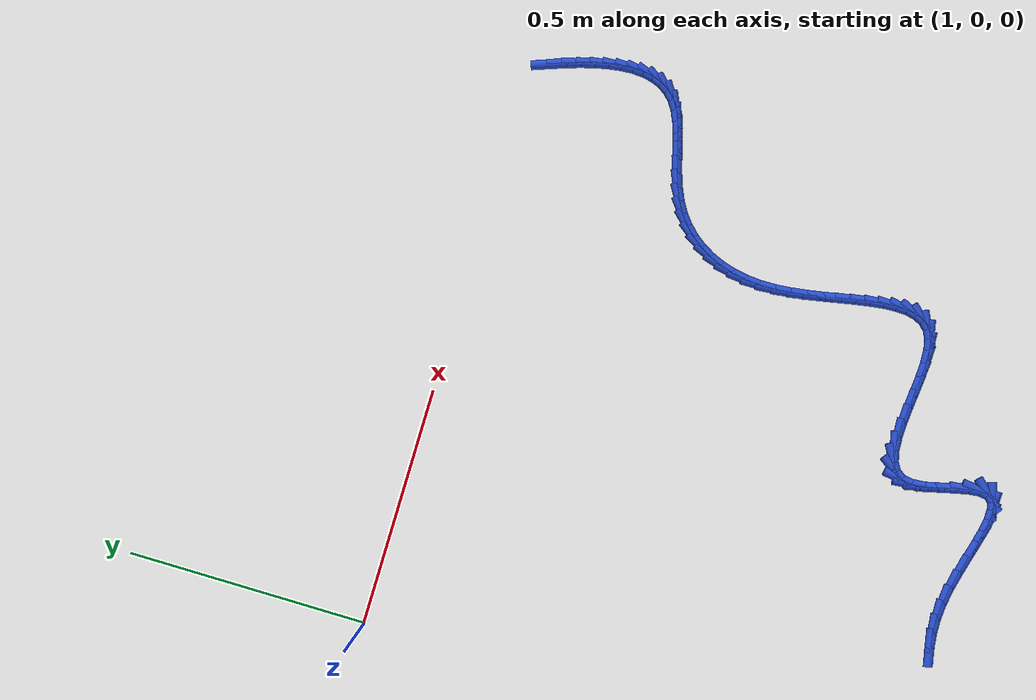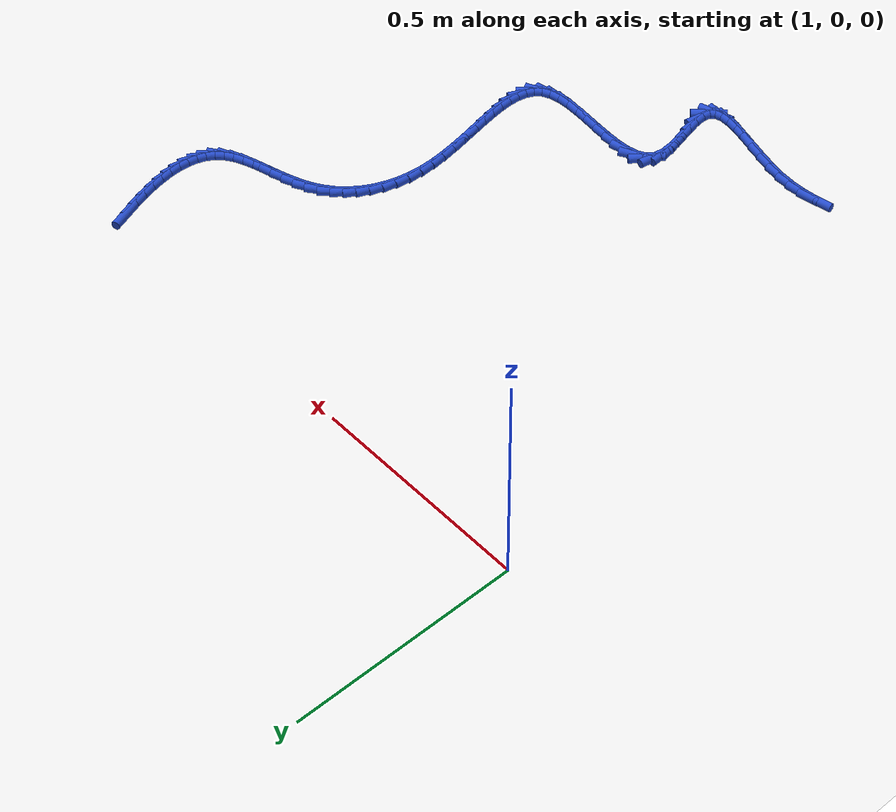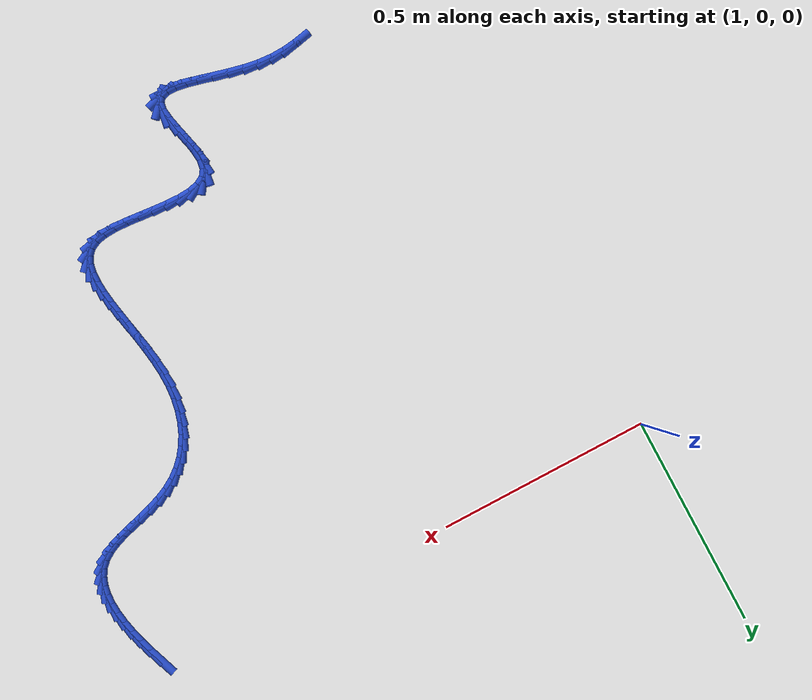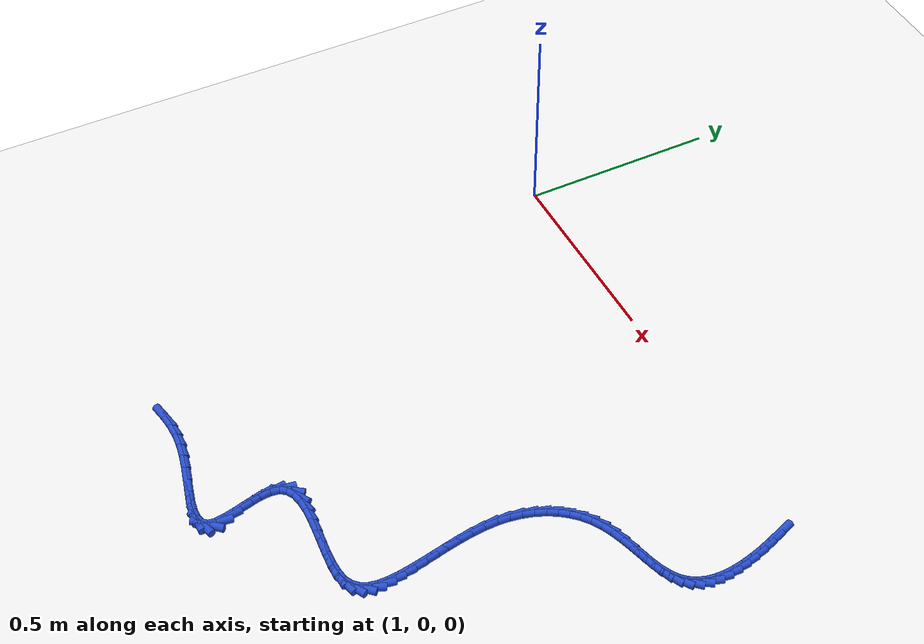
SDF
<sdf version="1.6">
 <world name="default">
  <model name="ground_plane">
   <static>1</static>
   <link name="link">
    <collision name="collision">
     <geometry><plane><normal>0 0 1</normal><size>100 100</size></plane></geometry>
     <surface><friction><ode><mu>100</mu><mu2>50</mu2></ode></friction></surface>
    </collision>
    <visual name="visual">
     <cast_shadows>0</cast_shadows>
     <geometry><plane><normal>0 0 1</normal><size>100 100</size></plane></geometry>
     <material>
      <script><uri>file://media/materials/scripts/gazebo.material</uri><name>Gazebo/WhiteGlow</name></script>
     </material>
    </visual>
   </link>
  </model>
  <model name="line">
   <link name="link_144">
    <pose>2.210489001187484 -0.039229997507462366 0.01 0 1.57 -1.22511702229926</pose>
    <collision name="collision">
     <geometry><cylinder><radius>0.01</radius><length>0.08</length></cylinder></geometry>
    </collision>
    <visual name="visual">
     <material>
      <script><name>Gazebo/Blue</name><uri>file://media/materials/scripts/gazebo.material</uri></script>
     </material>
     <geometry><cylinder><radius>0.01</radius><length>0.08</length></cylinder></geometry>
    </visual>
   </link>
   <link name="link_145">
    <pose>2.221198087478243 -0.06896591488921268 0.01 0 1.57 -1.258835107251744</pose>
    <collision name="collision">
     <geometry><cylinder><radius>0.01</radius><length>0.08</length></cylinder></geometry>
    </collision>
    <visual name="visual">
     <material>
      <script><name>Gazebo/Blue</name><uri>file://media/materials/scripts/gazebo.material</uri></script>
     </material>
     <geometry><cylinder><radius>0.01</radius><length>0.08</length></cylinder></geometry>
    </visual>
   </link>
   <link name="link_146">
    <pose>2.2306071584330835 -0.09814211334353215 0.01 0 1.57 -1.3015253641112232</pose>
    <collision name="collision">
     <geometry><cylinder><radius>0.01</radius><length>0.08</length></cylinder></geometry>
    </collision>
    <visual name="visual">
     <material>
      <script><name>Gazebo/Blue</name><uri>file://media/materials/scripts/gazebo.material</uri></script>
     </material>
     <geometry><cylinder><radius>0.01</radius><length>0.08</length></cylinder></geometry>
    </visual>
   </link>
   <link name="link_147">
    <pose>2.2384458693210196 -0.1265459755670109 0.01 0 1.57 -1.3554344568841672</pose>
    <collision name="collision">
     <geometry><cylinder><radius>0.01</radius><length>0.08</length></cylinder></geometry>
    </collision>
    <visual name="visual">
     <material>
      <script><name>Gazebo/Blue</name><uri>file://media/materials/scripts/gazebo.material</uri></script>
     </material>
     <geometry><cylinder><radius>0.01</radius><length>0.08</length></cylinder></geometry>
    </visual>
   </link>
   <link name="link_148">
    <pose>2.244443875411063 -0.15396488425623905 0.01 0 1.57 -1.4236316221638114</pose>
    <collision name="collision">
     <geometry><cylinder><radius>0.01</radius><length>0.08</length></cylinder></geometry>
    </collision>
    <visual name="visual">
     <material>
      <script><name>Gazebo/Blue</name><uri>file://media/materials/scripts/gazebo.material</uri></script>
     </material>
     <geometry><cylinder><radius>0.01</radius><length>0.08</length></cylinder></geometry>
    </visual>
   </link>
   <link name="link_149">
    <pose>2.248330831972227 -0.18018622210780671 0.01 0 1.57 -1.5101897656618217</pose>
    <collision name="collision">
     <geometry><cylinder><radius>0.01</radius><length>0.08</length></cylinder></geometry>
    </collision>
    <visual name="visual">
     <material>
      <script><name>Gazebo/Blue</name><uri>file://media/materials/scripts/gazebo.material</uri></script>
     </material>
     <geometry><cylinder><radius>0.01</radius><length>0.08</length></cylinder></geometry>
    </visual>
   </link>
   <link name="link_150">
    <pose>2.249836394273524 -0.20499737181830405 0.01 0 1.57 1.5214075223963521</pose>
    <collision name="collision">
     <geometry><cylinder><radius>0.01</radius><length>0.08</length></cylinder></geometry>
    </collision>
    <visual name="visual">
     <material>
      <script><name>Gazebo/Blue</name><uri>file://media/materials/scripts/gazebo.material</uri></script>
     </material>
     <geometry><cylinder><radius>0.01</radius><length>0.08</length></cylinder></geometry>
    </visual>
   </link>
   <link name="link_151">
    <pose>2.248690217583968 -0.22818571608432106 0.01 0 1.57 1.3825279454444908</pose>
    <collision name="collision">
     <geometry><cylinder><radius>0.01</radius><length>0.08</length></cylinder></geometry>
    </collision>
    <visual name="visual">
     <material>
      <script><name>Gazebo/Blue</name><uri>file://media/materials/scripts/gazebo.material</uri></script>
     </material>
     <geometry><cylinder><radius>0.01</radius><length>0.08</length></cylinder></geometry>
    </visual>
   </link>
   <link name="link_152">
    <pose>2.24462195717257 -0.24953863760244716 0.01 0 1.57 1.2110560425450028</pose>
    <collision name="collision">
     <geometry><cylinder><radius>0.01</radius><length>0.08</length></cylinder></geometry>
    </collision>
    <visual name="visual">
     <material>
      <script><name>Gazebo/Blue</name><uri>file://media/materials/scripts/gazebo.material</uri></script>
     </material>
     <geometry><cylinder><radius>0.01</radius><length>0.08</length></cylinder></geometry>
    </visual>
   </link>
   <link name="link_153">
    <pose>2.237361268308344 -0.268843519069274 0.01 0 1.57 1.0092145886800634</pose>
    <collision name="collision">
     <geometry><cylinder><radius>0.01</radius><length>0.08</length></cylinder></geometry>
    </collision>
    <visual name="visual">
     <material>
      <script><name>Gazebo/Blue</name><uri>file://media/materials/scripts/gazebo.material</uri></script>
     </material>
     <geometry><cylinder><radius>0.01</radius><length>0.08</length></cylinder></geometry>
    </visual>
   </link>
   <link name="link_154">
    <pose>2.2266378062603023 -0.2858877431813909 0.01 0 1.57 0.789338178329338</pose>
    <collision name="collision">
     <geometry><cylinder><radius>0.01</radius><length>0.08</length></cylinder></geometry>
    </collision>
    <visual name="visual">
     <material>
      <script><name>Gazebo/Blue</name><uri>file://media/materials/scripts/gazebo.material</uri></script>
     </material>
     <geometry><cylinder><radius>0.01</radius><length>0.08</length></cylinder></geometry>
    </visual>
   </link>
   <link name="link_155">
    <pose>2.2121812262974574 -0.3004586926353878 0.01 0 1.57 0.5784057601118012</pose>
    <collision name="collision">
     <geometry><cylinder><radius>0.01</radius><length>0.08</length></cylinder></geometry>
    </collision>
    <visual name="visual">
     <material>
      <script><name>Gazebo/Blue</name><uri>file://media/materials/scripts/gazebo.material</uri></script>
     </material>
     <geometry><cylinder><radius>0.01</radius><length>0.08</length></cylinder></geometry>
    </visual>
   </link>
   <link name="link_156">
    <pose>2.1938335038396235 -0.31243777868644734 0.01 0 1.57 0.4258750322062477</pose>
    <collision name="collision">
     <geometry><cylinder><radius>0.01</radius><length>0.08</length></cylinder></geometry>
    </collision>
    <visual name="visual">
     <material>
      <script><name>Gazebo/Blue</name><uri>file://media/materials/scripts/gazebo.material</uri></script>
     </material>
     <geometry><cylinder><radius>0.01</radius><length>0.08</length></cylinder></geometry>
    </visual>
   </link>
   <link name="link_157">
    <pose>2.172127234531675 -0.3222845637392524 0.01 0 1.57 0.33296841233727054</pose>
    <collision name="collision">
     <geometry><cylinder><radius>0.01</radius><length>0.08</length></cylinder></geometry>
    </collision>
    <visual name="visual">
     <material>
      <script><name>Gazebo/Blue</name><uri>file://media/materials/scripts/gazebo.material</uri></script>
     </material>
     <geometry><cylinder><radius>0.01</radius><length>0.08</length></cylinder></geometry>
    </visual>
   </link>
   <link name="link_158">
    <pose>2.1478573128639797 -0.33067819307997437 0.01 0 1.57 0.2846990485611873</pose>
    <collision name="collision">
     <geometry><cylinder><radius>0.01</radius><length>0.08</length></cylinder></geometry>
    </collision>
    <visual name="visual">
     <material>
      <script><name>Gazebo/Blue</name><uri>file://media/materials/scripts/gazebo.material</uri></script>
     </material>
     <geometry><cylinder><radius>0.01</radius><length>0.08</length></cylinder></geometry>
    </visual>
   </link>
   <link name="link_159">
    <pose>2.121819138427312 -0.3382982348384413 0.01 0 1.57 0.2717357788961096</pose>
    <collision name="collision">
     <geometry><cylinder><radius>0.01</radius><length>0.08</length></cylinder></geometry>
    </collision>
    <visual name="visual">
     <material>
      <script><name>Gazebo/Blue</name><uri>file://media/materials/scripts/gazebo.material</uri></script>
     </material>
     <geometry><cylinder><radius>0.01</radius><length>0.08</length></cylinder></geometry>
    </visual>
   </link>
   <link name="link_160">
    <pose>2.0948081108124468 -0.3458242571444815 0.01 0 1.57 0.28993855078027764</pose>
    <collision name="collision">
     <geometry><cylinder><radius>0.01</radius><length>0.08</length></cylinder></geometry>
    </collision>
    <visual name="visual">
     <material>
      <script><name>Gazebo/Blue</name><uri>file://media/materials/scripts/gazebo.material</uri></script>
     </material>
     <geometry><cylinder><radius>0.01</radius><length>0.08</length></cylinder></geometry>
    </visual>
   </link>
   <link name="link_161">
    <pose>2.0676196296101583 -0.3539358281279232 0.01 0 1.57 0.3392541886292463</pose>
    <collision name="collision">
     <geometry><cylinder><radius>0.01</radius><length>0.08</length></cylinder></geometry>
    </collision>
    <visual name="visual">
     <material>
      <script><name>Gazebo/Blue</name><uri>file://media/materials/scripts/gazebo.material</uri></script>
     </material>
     <geometry><cylinder><radius>0.01</radius><length>0.08</length></cylinder></geometry>
    </visual>
   </link>
   <link name="link_162">
    <pose>2.0410490944112225 -0.3633125159185947 0.01 0 1.57 0.4228749961324302</pose>
    <collision name="collision">
     <geometry><cylinder><radius>0.01</radius><length>0.08</length></cylinder></geometry>
    </collision>
    <visual name="visual">
     <material>
      <script><name>Gazebo/Blue</name><uri>file://media/materials/scripts/gazebo.material</uri></script>
     </material>
     <geometry><cylinder><radius>0.01</radius><length>0.08</length></cylinder></geometry>
    </visual>
   </link>
   <link name="link_163">
    <pose>2.0158919048064132 -0.374633888646324 0.01 0 1.57 0.5422141860394929</pose>
    <collision name="collision">
     <geometry><cylinder><radius>0.01</radius><length>0.08</length></cylinder></geometry>
    </collision>
    <visual name="visual">
     <material>
      <script><name>Gazebo/Blue</name><uri>file://media/materials/scripts/gazebo.material</uri></script>
     </material>
     <geometry><cylinder><radius>0.01</radius><length>0.08</length></cylinder></geometry>
    </visual>
   </link>
   <link name="link_164">
    <pose>1.9928740031506729 -0.3885008717269988 0.01 0 1.57 0.67397977079598</pose>
    <collision name="collision">
     <geometry><cylinder><radius>0.01</radius><length>0.08</length></cylinder></geometry>
    </collision>
    <visual name="visual">
     <material>
      <script><name>Gazebo/Blue</name><uri>file://media/materials/scripts/gazebo.material</uri></script>
     </material>
     <geometry><cylinder><radius>0.01</radius><length>0.08</length></cylinder></geometry>
    </visual>
   </link>
   <link name="link_165">
    <pose>1.9722466948435853 -0.4049769845329436 0.01 0 1.57 0.8053410938661381</pose>
    <collision name="collision">
     <geometry><cylinder><radius>0.01</radius><length>0.08</length></cylinder></geometry>
    </collision>
    <visual name="visual">
     <material>
      <script><name>Gazebo/Blue</name><uri>file://media/materials/scripts/gazebo.material</uri></script>
     </material>
     <geometry><cylinder><radius>0.01</radius><length>0.08</length></cylinder></geometry>
    </visual>
   </link>
   <link name="link_166">
    <pose>1.9540628028442577 -0.4239010153828854 0.01 0 1.57 0.9339412478558246</pose>
    <collision name="collision">
     <geometry><cylinder><radius>0.01</radius><length>0.08</length></cylinder></geometry>
    </collision>
    <visual name="visual">
     <material>
      <script><name>Gazebo/Blue</name><uri>file://media/materials/scripts/gazebo.material</uri></script>
     </material>
     <geometry><cylinder><radius>0.01</radius><length>0.08</length></cylinder></geometry>
    </visual>
   </link>
   <link name="link_167">
    <pose>1.938374481709625 -0.44511099579951496 0.01 0 1.57 1.0579107853298668</pose>
    <collision name="collision">
     <geometry><cylinder><radius>0.01</radius><length>0.08</length></cylinder></geometry>
    </collision>
    <visual name="visual">
     <material>
      <script><name>Gazebo/Blue</name><uri>file://media/materials/scripts/gazebo.material</uri></script>
     </material>
     <geometry><cylinder><radius>0.01</radius><length>0.08</length></cylinder></geometry>
    </visual>
   </link>
   <link name="link_168">
    <pose>1.9252338859966236 -0.46844495730552393 0.01 0 1.57 1.1759807352526521</pose>
    <collision name="collision">
     <geometry><cylinder><radius>0.01</radius><length>0.08</length></cylinder></geometry>
    </collision>
    <visual name="visual">
     <material>
      <script><name>Gazebo/Blue</name><uri>file://media/materials/scripts/gazebo.material</uri></script>
     </material>
     <geometry><cylinder><radius>0.01</radius><length>0.08</length></cylinder></geometry>
    </visual>
   </link>
   <link name="link_169">
    <pose>1.91469317026219 -0.4937409314236031 0.01 0 1.57 1.2874894843279672</pose>
    <collision name="collision">
     <geometry><cylinder><radius>0.01</radius><length>0.08</length></cylinder></geometry>
    </collision>
    <visual name="visual">
     <material>
      <script><name>Gazebo/Blue</name><uri>file://media/materials/scripts/gazebo.material</uri></script>
     </material>
     <geometry><cylinder><radius>0.01</radius><length>0.08</length></cylinder></geometry>
    </visual>
   </link>
   <link name="link_170">
    <pose>1.9068044890632585 -0.5208369496764449 0.01 0 1.57 1.3922869300087282</pose>
    <collision name="collision">
     <geometry><cylinder><radius>0.01</radius><length>0.08</length></cylinder></geometry>
    </collision>
    <visual name="visual">
     <material>
      <script><name>Gazebo/Blue</name><uri>file://media/materials/scripts/gazebo.material</uri></script>
     </material>
     <geometry><cylinder><radius>0.01</radius><length>0.08</length></cylinder></geometry>
    </visual>
   </link>
   <link name="link_171">
    <pose>1.9016199969567664 -0.5495710435867401 0.01 0 1.57 1.490593620370659</pose>
    <collision name="collision">
     <geometry><cylinder><radius>0.01</radius><length>0.08</length></cylinder></geometry>
    </collision>
    <visual name="visual">
     <material>
      <script><name>Gazebo/Blue</name><uri>file://media/materials/scripts/gazebo.material</uri></script>
     </material>
     <geometry><cylinder><radius>0.01</radius><length>0.08</length></cylinder></geometry>
    </visual>
   </link>
   <link name="link_172">
    <pose>1.8991918484996486 -0.5797812446771801 0.01 0 1.57 -1.5594993159832247</pose>
    <collision name="collision">
     <geometry><cylinder><radius>0.01</radius><length>0.08</length></cylinder></geometry>
    </collision>
    <visual name="visual">
     <material>
      <script><name>Gazebo/Blue</name><uri>file://media/materials/scripts/gazebo.material</uri></script>
     </material>
     <geometry><cylinder><radius>0.01</radius><length>0.08</length></cylinder></geometry>
    </visual>
   </link>
   <link name="link_173">
    <pose>1.8995478806574815 -0.6112955113924976 0.01 0 1.57 -1.4849915014093555</pose>
    <collision name="collision">
     <geometry><cylinder><radius>0.01</radius><length>0.08</length></cylinder></geometry>
    </collision>
    <visual name="visual">
     <material>
      <script><name>Gazebo/Blue</name><uri>file://media/materials/scripts/gazebo.material</uri></script>
     </material>
     <geometry><cylinder><radius>0.01</radius><length>0.08</length></cylinder></geometry>
    </visual>
   </link>
   <link name="link_174">
    <pose>1.9023426859914796 -0.6437871931157323 0.01 0 1.57 -1.4325031590524737</pose>
    <collision name="collision">
     <geometry><cylinder><radius>0.01</radius><length>0.08</length></cylinder></geometry>
    </collision>
    <visual name="visual">
     <material>
      <script><name>Gazebo/Blue</name><uri>file://media/materials/scripts/gazebo.material</uri></script>
     </material>
     <geometry><cylinder><radius>0.01</radius><length>0.08</length></cylinder></geometry>
    </visual>
   </link>
   <link name="link_175">
    <pose>1.90693865791352 -0.6768086015511847 0.01 0 1.57 -1.3987471684020534</pose>
    <collision name="collision">
     <geometry><cylinder><radius>0.01</radius><length>0.08</length></cylinder></geometry>
    </collision>
    <visual name="visual">
     <material>
      <script><name>Gazebo/Blue</name><uri>file://media/materials/scripts/gazebo.material</uri></script>
     </material>
     <geometry><cylinder><radius>0.01</radius><length>0.08</length></cylinder></geometry>
    </visual>
   </link>
   <link name="link_176">
    <pose>1.9126903863984173 -0.7099088159847503 0.01 0 1.57 -1.3817449118954623</pose>
    <collision name="collision">
     <geometry><cylinder><radius>0.01</radius><length>0.08</length></cylinder></geometry>
    </collision>
    <visual name="visual">
     <material>
      <script><name>Gazebo/Blue</name><uri>file://media/materials/scripts/gazebo.material</uri></script>
     </material>
     <geometry><cylinder><radius>0.01</radius><length>0.08</length></cylinder></geometry>
    </visual>
   </link>
   <link name="link_177">
    <pose>1.9189524614209879 -0.7426369157023248 0.01 0 1.57 -1.3810673159596891</pose>
    <collision name="collision">
     <geometry><cylinder><radius>0.01</radius><length>0.08</length></cylinder></geometry>
    </collision>
    <visual name="visual">
     <material>
      <script><name>Gazebo/Blue</name><uri>file://media/materials/scripts/gazebo.material</uri></script>
     </material>
     <geometry><cylinder><radius>0.01</radius><length>0.08</length></cylinder></geometry>
    </visual>
   </link>
   <link name="link_178">
    <pose>1.9250794729560468 -0.7745419799898036 0.01 0 1.57 -1.3979911840201615</pose>
    <collision name="collision">
     <geometry><cylinder><radius>0.01</radius><length>0.08</length></cylinder></geometry>
    </collision>
    <visual name="visual">
     <material>
      <script><name>Gazebo/Blue</name><uri>file://media/materials/scripts/gazebo.material</uri></script>
     </material>
     <geometry><cylinder><radius>0.01</radius><length>0.08</length></cylinder></geometry>
    </visual>
   </link>
   <link name="link_179">
    <pose>1.9304260109784082 -0.805173088133082 0.01 0 1.57 -1.435985450537656</pose>
    <collision name="collision">
     <geometry><cylinder><radius>0.01</radius><length>0.08</length></cylinder></geometry>
    </collision>
    <visual name="visual">
     <material>
      <script><name>Gazebo/Blue</name><uri>file://media/materials/scripts/gazebo.material</uri></script>
     </material>
     <geometry><cylinder><radius>0.01</radius><length>0.08</length></cylinder></geometry>
    </visual>
   </link>
   <link name="link_180">
    <pose>1.9343466654628882 -0.834079319418056 0.01 0 1.57 -1.5017208063099905</pose>
    <collision name="collision">
     <geometry><cylinder><radius>0.01</radius><length>0.08</length></cylinder></geometry>
    </collision>
    <visual name="visual">
     <material>
      <script><name>Gazebo/Blue</name><uri>file://media/materials/scripts/gazebo.material</uri></script>
     </material>
     <geometry><cylinder><radius>0.01</radius><length>0.08</length></cylinder></geometry>
    </visual>
   </link>
   <link name="link_181">
    <pose>1.9361960263843012 -0.8608097531306207 0.01 0 1.57 1.5348280709587931</pose>
    <collision name="collision">
     <geometry><cylinder><radius>0.01</radius><length>0.08</length></cylinder></geometry>
    </collision>
    <visual name="visual">
     <material>
      <script><name>Gazebo/Blue</name><uri>file://media/materials/scripts/gazebo.material</uri></script>
     </material>
     <geometry><cylinder><radius>0.01</radius><length>0.08</length></cylinder></geometry>
    </visual>
   </link>
   <link name="link_182">
    <pose>1.9353286837174632 -0.8849134685566721 0.01 0 1.57 1.3722924539840935</pose>
    <collision name="collision">
     <geometry><cylinder><radius>0.01</radius><length>0.08</length></cylinder></geometry>
    </collision>
    <visual name="visual">
     <material>
      <script><name>Gazebo/Blue</name><uri>file://media/materials/scripts/gazebo.material</uri></script>
     </material>
     <geometry><cylinder><radius>0.01</radius><length>0.08</length></cylinder></geometry>
    </visual>
   </link>
   <link name="link_183">
    <pose>1.9310992274371888 -0.9059395449821055 0.01 0 1.57 1.1308201965693823</pose>
    <collision name="collision">
     <geometry><cylinder><radius>0.01</radius><length>0.08</length></cylinder></geometry>
    </collision>
    <visual name="visual">
     <material>
      <script><name>Gazebo/Blue</name><uri>file://media/materials/scripts/gazebo.material</uri></script>
     </material>
     <geometry><cylinder><radius>0.01</radius><length>0.08</length></cylinder></geometry>
    </visual>
   </link>
   <link name="link_184">
    <pose>1.9228622475182937 -0.923437061692816 0.01 0 1.57 0.8091790434156118</pose>
    <collision name="collision">
     <geometry><cylinder><radius>0.01</radius><length>0.08</length></cylinder></geometry>
    </collision>
    <visual name="visual">
     <material>
      <script><name>Gazebo/Blue</name><uri>file://media/materials/scripts/gazebo.material</uri></script>
     </material>
     <geometry><cylinder><radius>0.01</radius><length>0.08</length></cylinder></geometry>
    </visual>
   </link>
   <link name="link_185">
    <pose>1.9099723339355927 -0.9369550979747001 0.01 0 1.57 0.46361050912798646</pose>
    <collision name="collision">
     <geometry><cylinder><radius>0.01</radius><length>0.08</length></cylinder></geometry>
    </collision>
    <visual name="visual">
     <material>
      <script><name>Gazebo/Blue</name><uri>file://media/materials/scripts/gazebo.material</uri></script>
     </material>
     <geometry><cylinder><radius>0.01</radius><length>0.08</length></cylinder></geometry>
    </visual>
   </link>
   <link name="link_186">
    <pose>1.8917884596464656 -0.9460461918606263 0.01 0 1.57 0.1959795250364585</pose>
    <collision name="collision">
     <geometry><cylinder><radius>0.01</radius><length>0.08</length></cylinder></geometry>
    </collision>
    <visual name="visual">
     <material>
      <script><name>Gazebo/Blue</name><uri>file://media/materials/scripts/gazebo.material</uri></script>
     </material>
     <geometry><cylinder><radius>0.01</radius><length>0.08</length></cylinder></geometry>
    </visual>
   </link>
   <link name="link_187">
    <pose>1.8682483133919128 -0.950719563890265 0.01 0 1.57 0.04216204242046004</pose>
    <collision name="collision">
     <geometry><cylinder><radius>0.01</radius><length>0.08</length></cylinder></geometry>
    </collision>
    <visual name="visual">
     <material>
      <script><name>Gazebo/Blue</name><uri>file://media/materials/scripts/gazebo.material</uri></script>
     </material>
     <geometry><cylinder><radius>0.01</radius><length>0.08</length></cylinder></geometry>
    </visual>
   </link>
   <link name="link_188">
    <pose>1.8404405424186958 -0.9518926915240666 0.01 0 1.57 -0.04218634353071012</pose>
    <collision name="collision">
     <geometry><cylinder><radius>0.01</radius><length>0.08</length></cylinder></geometry>
    </collision>
    <visual name="visual">
     <material>
      <script><name>Gazebo/Blue</name><uri>file://media/materials/scripts/gazebo.material</uri></script>
     </material>
     <geometry><cylinder><radius>0.01</radius><length>0.08</length></cylinder></geometry>
    </visual>
   </link>
   <link name="link_189">
    <pose>1.80958988046359 -0.9505904422767347 0.01 0 1.57 -0.08406398725477558</pose>
    <collision name="collision">
     <geometry><cylinder><radius>0.01</radius><length>0.08</length></cylinder></geometry>
    </collision>
    <visual name="visual">
     <material>
      <script><name>Gazebo/Blue</name><uri>file://media/materials/scripts/gazebo.material</uri></script>
     </material>
     <geometry><cylinder><radius>0.01</radius><length>0.08</length></cylinder></geometry>
    </visual>
   </link>
   <link name="link_190">
    <pose>1.776921061263368 -0.9478376836629727 0.01 0 1.57 -0.09526655343804563</pose>
    <collision name="collision">
     <geometry><cylinder><radius>0.01</radius><length>0.08</length></cylinder></geometry>
    </collision>
    <visual name="visual">
     <material>
      <script><name>Gazebo/Blue</name><uri>file://media/materials/scripts/gazebo.material</uri></script>
     </material>
     <geometry><cylinder><radius>0.01</radius><length>0.08</length></cylinder></geometry>
    </visual>
   </link>
   <link name="link_191">
    <pose>1.7436588185548045 -0.9446592831974842 0.01 0 1.57 -0.07887680690685396</pose>
    <collision name="collision">
     <geometry><cylinder><radius>0.01</radius><length>0.08</length></cylinder></geometry>
    </collision>
    <visual name="visual">
     <material>
      <script><name>Gazebo/Blue</name><uri>file://media/materials/scripts/gazebo.material</uri></script>
     </material>
     <geometry><cylinder><radius>0.01</radius><length>0.08</length></cylinder></geometry>
    </visual>
   </link>
   <link name="link_192">
    <pose>1.7110278860746737 -0.9420801083949734 0.01 0 1.57 -0.03102448857505764</pose>
    <collision name="collision">
     <geometry><cylinder><radius>0.01</radius><length>0.08</length></cylinder></geometry>
    </collision>
    <visual name="visual">
     <material>
      <script><name>Gazebo/Blue</name><uri>file://media/materials/scripts/gazebo.material</uri></script>
     </material>
     <geometry><cylinder><radius>0.01</radius><length>0.08</length></cylinder></geometry>
    </visual>
   </link>
   <link name="link_193">
    <pose>1.6802529975597493 -0.9411250267701432 0.01 0 1.57 0.06108777167416095</pose>
    <collision name="collision">
     <geometry><cylinder><radius>0.01</radius><length>0.08</length></cylinder></geometry>
    </collision>
    <visual name="visual">
     <material>
      <script><name>Gazebo/Blue</name><uri>file://media/materials/scripts/gazebo.material</uri></script>
     </material>
     <geometry><cylinder><radius>0.01</radius><length>0.08</length></cylinder></geometry>
    </visual>
   </link>
   <link name="link_194">
    <pose>1.652558886746806 -0.9428189058376979 0.01 0 1.57 0.2255944206056217</pose>
    <collision name="collision">
     <geometry><cylinder><radius>0.01</radius><length>0.08</length></cylinder></geometry>
    </collision>
    <visual name="visual">
     <material>
      <script><name>Gazebo/Blue</name><uri>file://media/materials/scripts/gazebo.material</uri></script>
     </material>
     <geometry><cylinder><radius>0.01</radius><length>0.08</length></cylinder></geometry>
    </visual>
   </link>
   <link name="link_195">
    <pose>1.6291702873726175 -0.9481866131123413 0.01 0 1.57 0.513285638943719</pose>
    <collision name="collision">
     <geometry><cylinder><radius>0.01</radius><length>0.08</length></cylinder></geometry>
    </collision>
    <visual name="visual">
     <material>
      <script><name>Gazebo/Blue</name><uri>file://media/materials/scripts/gazebo.material</uri></script>
     </material>
     <geometry><cylinder><radius>0.01</radius><length>0.08</length></cylinder></geometry>
    </visual>
   </link>
   <link name="link_196">
    <pose>1.6113119331739576 -0.9582530161087766 0.01 0 1.57 0.9579314037914294</pose>
    <collision name="collision">
     <geometry><cylinder><radius>0.01</radius><length>0.08</length></cylinder></geometry>
    </collision>
    <visual name="visual">
     <material>
      <script><name>Gazebo/Blue</name><uri>file://media/materials/scripts/gazebo.material</uri></script>
     </material>
     <geometry><cylinder><radius>0.01</radius><length>0.08</length></cylinder></geometry>
    </visual>
   </link>
   <link name="link_197">
    <pose>1.6002085578876009 -0.9740429823417078 0.01 0 1.57 1.4114909491018959</pose>
    <collision name="collision">
     <geometry><cylinder><radius>0.01</radius><length>0.08</length></cylinder></geometry>
    </collision>
    <visual name="visual">
     <material>
      <script><name>Gazebo/Blue</name><uri>file://media/materials/scripts/gazebo.material</uri></script>
     </material>
     <geometry><cylinder><radius>0.01</radius><length>0.08</length></cylinder></geometry>
    </visual>
   </link>
   <link name="link_198">
    <pose>1.5966504623881057 -0.996188782726017 0.01 0 1.57 -1.4812558861722152</pose>
    <collision name="collision">
     <geometry><cylinder><radius>0.01</radius><length>0.08</length></cylinder></geometry>
    </collision>
    <visual name="visual">
     <material>
      <script><name>Gazebo/Blue</name><uri>file://media/materials/scripts/gazebo.material</uri></script>
     </material>
     <geometry><cylinder><radius>0.01</radius><length>0.08</length></cylinder></geometry>
    </visual>
   </link>
   <link name="link_199">
    <pose>1.5990752326936977 -1.0231965418067301 0.01 0 1.57 -1.3694946504420455</pose>
    <collision name="collision">
     <geometry><cylinder><radius>0.01</radius><length>0.08</length></cylinder></geometry>
    </collision>
    <visual name="visual">
     <material>
      <script><name>Gazebo/Blue</name><uri>file://media/materials/scripts/gazebo.material</uri></script>
     </material>
     <geometry><cylinder><radius>0.01</radius><length>0.08</length></cylinder></geometry>
    </visual>
   </link>
   <link name="link_200">
    <pose>1.605127701131328 -1.0528559733074108 0.01 0 1.57 -1.332102096409879</pose>
    <collision name="collision">
     <geometry><cylinder><radius>0.01</radius><length>0.08</length></cylinder></geometry>
    </collision>
    <visual name="visual">
     <material>
      <script><name>Gazebo/Blue</name><uri>file://media/materials/scripts/gazebo.material</uri></script>
     </material>
     <geometry><cylinder><radius>0.01</radius><length>0.08</length></cylinder></geometry>
    </visual>
   </link>
   <link name="link_201">
    <pose>1.6124520958533455 -1.0829562449595584 0.01 0 1.57 -1.3539804726271412</pose>
    <collision name="collision">
     <geometry><cylinder><radius>0.01</radius><length>0.08</length></cylinder></geometry>
    </collision>
    <visual name="visual">
     <material>
      <script><name>Gazebo/Blue</name><uri>file://media/materials/scripts/gazebo.material</uri></script>
     </material>
     <geometry><cylinder><radius>0.01</radius><length>0.08</length></cylinder></geometry>
    </visual>
   </link>
   <link name="link_202">
    <pose>1.6186926450120995 -1.1112865244946757 0.01 0 1.57 -1.4562691274090083</pose>
    <collision name="collision">
     <geometry><cylinder><radius>0.01</radius><length>0.08</length></cylinder></geometry>
    </collision>
    <visual name="visual">
     <material>
      <script><name>Gazebo/Blue</name><uri>file://media/materials/scripts/gazebo.material</uri></script>
     </material>
     <geometry><cylinder><radius>0.01</radius><length>0.08</length></cylinder></geometry>
    </visual>
   </link>
   <link name="link_203">
    <pose>1.6214935767599377 -1.1356359796442612 0.01 0 1.57 1.407931584315652</pose>
    <collision name="collision">
     <geometry><cylinder><radius>0.01</radius><length>0.08</length></cylinder></geometry>
    </collision>
    <visual name="visual">
     <material>
      <script><name>Gazebo/Blue</name><uri>file://media/materials/scripts/gazebo.material</uri></script>
     </material>
     <geometry><cylinder><radius>0.01</radius><length>0.08</length></cylinder></geometry>
    </visual>
   </link>
   <link name="link_204">
    <pose>1.61850832170246 -1.1538032862394716 0.01 0 1.57 0.8241019399012502</pose>
    <collision name="collision">
     <geometry><cylinder><radius>0.01</radius><length>0.08</length></cylinder></geometry>
    </collision>
    <visual name="visual">
     <material>
      <script><name>Gazebo/Blue</name><uri>file://media/materials/scripts/gazebo.material</uri></script>
     </material>
     <geometry><cylinder><radius>0.01</radius><length>0.08</length></cylinder></geometry>
    </visual>
   </link>
   <link name="link_205">
    <pose>1.6084452506305769 -1.1646770986356099 0.01 0 1.57 0.2706371436614782</pose>
    <collision name="collision">
     <geometry><cylinder><radius>0.01</radius><length>0.08</length></cylinder></geometry>
    </collision>
    <visual name="visual">
     <material>
      <script><name>Gazebo/Blue</name><uri>file://media/materials/scripts/gazebo.material</uri></script>
     </material>
     <geometry><cylinder><radius>0.01</radius><length>0.08</length></cylinder></geometry>
    </visual>
   </link>
   <link name="link_206">
    <pose>1.5920308219489268 -1.1692311867134308 0.01 0 1.57 -0.025516409658403048</pose>
    <collision name="collision">
     <geometry><cylinder><radius>0.01</radius><length>0.08</length></cylinder></geometry>
    </collision>
    <visual name="visual">
     <material>
      <script><name>Gazebo/Blue</name><uri>file://media/materials/scripts/gazebo.material</uri></script>
     </material>
     <geometry><cylinder><radius>0.01</radius><length>0.08</length></cylinder></geometry>
    </visual>
   </link>
   <link name="link_207">
    <pose>1.570219122984309 -1.1686745096469624 0.01 0 1.57 -0.16821072793476713</pose>
    <collision name="collision">
     <geometry><cylinder><radius>0.01</radius><length>0.08</length></cylinder></geometry>
    </collision>
    <visual name="visual">
     <material>
      <script><name>Gazebo/Blue</name><uri>file://media/materials/scripts/gazebo.material</uri></script>
     </material>
     <geometry><cylinder><radius>0.01</radius><length>0.08</length></cylinder></geometry>
    </visual>
   </link>
   <link name="link_208">
    <pose>1.5439642410635237 -1.1642160266102324 0.01 0 1.57 -0.2359510550926759</pose>
    <collision name="collision">
     <geometry><cylinder><radius>0.01</radius><length>0.08</length></cylinder></geometry>
    </collision>
    <visual name="visual">
     <material>
      <script><name>Gazebo/Blue</name><uri>file://media/materials/scripts/gazebo.material</uri></script>
     </material>
     <geometry><cylinder><radius>0.01</radius><length>0.08</length></cylinder></geometry>
    </visual>
   </link>
   <link name="link_209">
    <pose>1.5142202635133701 -1.1570646967772698 0.01 0 1.57 -0.2613972595618108</pose>
    <collision name="collision">
     <geometry><cylinder><radius>0.01</radius><length>0.08</length></cylinder></geometry>
    </collision>
    <visual name="visual">
     <material>
      <script><name>Gazebo/Blue</name><uri>file://media/materials/scripts/gazebo.material</uri></script>
     </material>
     <geometry><cylinder><radius>0.01</radius><length>0.08</length></cylinder></geometry>
    </visual>
   </link>
   <link name="link_210">
    <pose>1.4819412776606486 -1.1484294793221033 0.01 0 1.57 -0.2573138849267789</pose>
    <collision name="collision">
     <geometry><cylinder><radius>0.01</radius><length>0.08</length></cylinder></geometry>
    </collision>
    <visual name="visual">
     <material>
      <script><name>Gazebo/Blue</name><uri>file://media/materials/scripts/gazebo.material</uri></script>
     </material>
     <geometry><cylinder><radius>0.01</radius><length>0.08</length></cylinder></geometry>
    </visual>
   </link>
   <link name="link_211">
    <pose>1.448081370832158 -1.139519333418761 0.01 0 1.57 -0.2272843387002689</pose>
    <collision name="collision">
     <geometry><cylinder><radius>0.01</radius><length>0.08</length></cylinder></geometry>
    </collision>
    <visual name="visual">
     <material>
      <script><name>Gazebo/Blue</name><uri>file://media/materials/scripts/gazebo.material</uri></script>
     </material>
     <geometry><cylinder><radius>0.01</radius><length>0.08</length></cylinder></geometry>
    </visual>
   </link>
   <link name="link_212">
    <pose>1.4135946303546987 -1.131543218241271 0.01 0 1.57 -0.16913017676374298</pose>
    <collision name="collision">
     <geometry><cylinder><radius>0.01</radius><length>0.08</length></cylinder></geometry>
    </collision>
    <visual name="visual">
     <material>
      <script><name>Gazebo/Blue</name><uri>file://media/materials/scripts/gazebo.material</uri></script>
     </material>
     <geometry><cylinder><radius>0.01</radius><length>0.08</length></cylinder></geometry>
    </visual>
   </link>
   <link name="link_213">
    <pose>1.3794351435550702 -1.1257100929636623 0.01 0 1.57 -0.07828225792115845</pose>
    <collision name="collision">
     <geometry><cylinder><radius>0.01</radius><length>0.08</length></cylinder></geometry>
    </collision>
    <visual name="visual">
     <material>
      <script><name>Gazebo/Blue</name><uri>file://media/materials/scripts/gazebo.material</uri></script>
     </material>
     <geometry><cylinder><radius>0.01</radius><length>0.08</length></cylinder></geometry>
    </visual>
   </link>
   <link name="link_214">
    <pose>1.3464945654312388 -1.1231261497421958 0.01 0 1.57 0.02307897525883164</pose>
    <collision name="collision">
     <geometry><cylinder><radius>0.01</radius><length>0.08</length></cylinder></geometry>
    </collision>
    <visual name="visual">
     <material>
      <script><name>Gazebo/Blue</name><uri>file://media/materials/scripts/gazebo.material</uri></script>
     </material>
     <geometry><cylinder><radius>0.01</radius><length>0.08</length></cylinder></geometry>
    </visual>
   </link>
   <link name="link_215">
    <pose>1.3150296246027302 -1.123852457290943 0.01 0 1.57 0.11536093062150687</pose>
    <collision name="collision">
     <geometry><cylinder><radius>0.01</radius><length>0.08</length></cylinder></geometry>
    </collision>
    <visual name="visual">
     <material>
      <script><name>Gazebo/Blue</name><uri>file://media/materials/scripts/gazebo.material</uri></script>
     </material>
     <geometry><cylinder><radius>0.01</radius><length>0.08</length></cylinder></geometry>
    </visual>
   </link>
   <link name="link_216">
    <pose>1.284926800836649 -1.1273406345227894 0.01 0 1.57 0.19480505532302692</pose>
    <collision name="collision">
     <geometry><cylinder><radius>0.01</radius><length>0.08</length></cylinder></geometry>
    </collision>
    <visual name="visual">
     <material>
      <script><name>Gazebo/Blue</name><uri>file://media/materials/scripts/gazebo.material</uri></script>
     </material>
     <geometry><cylinder><radius>0.01</radius><length>0.08</length></cylinder></geometry>
    </visual>
   </link>
  </model>
 </world>
</sdf>
